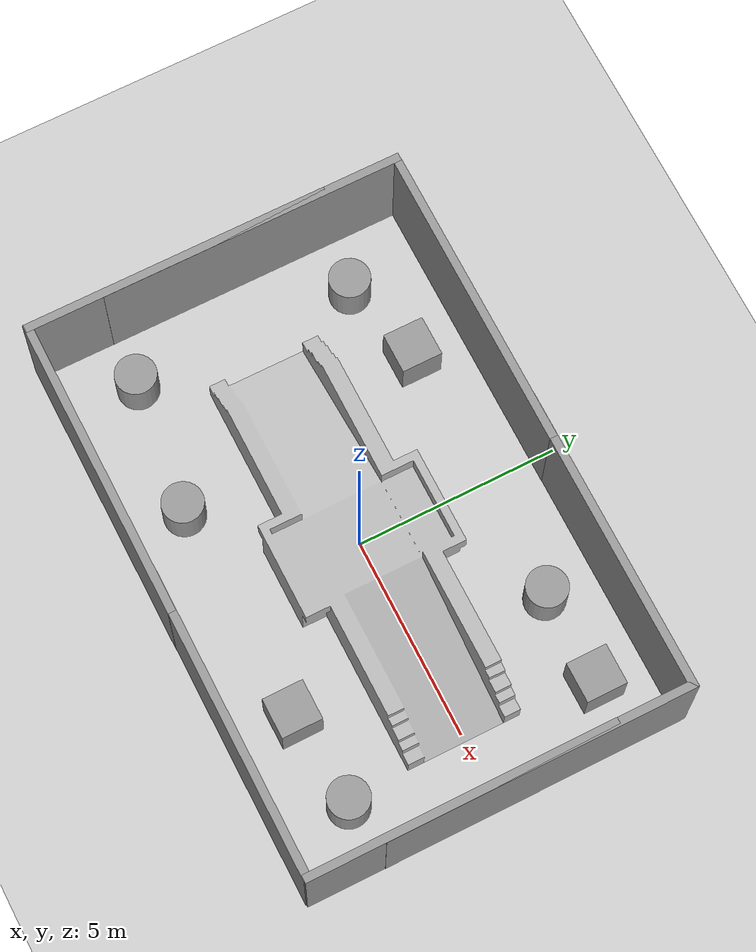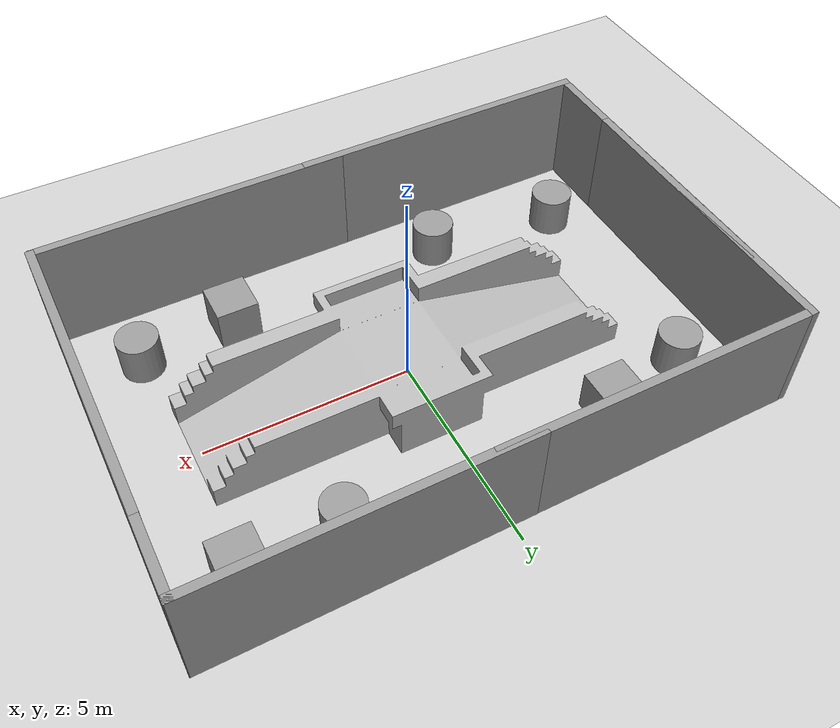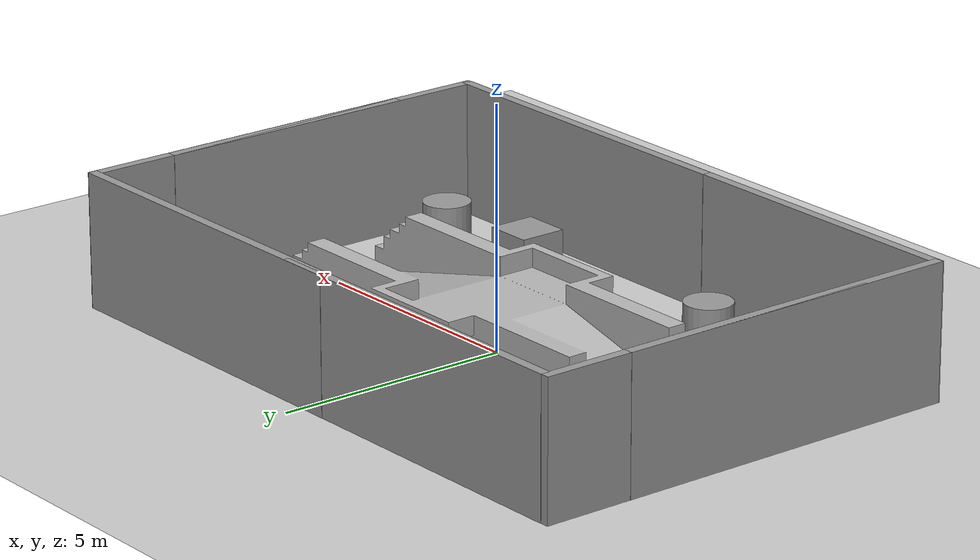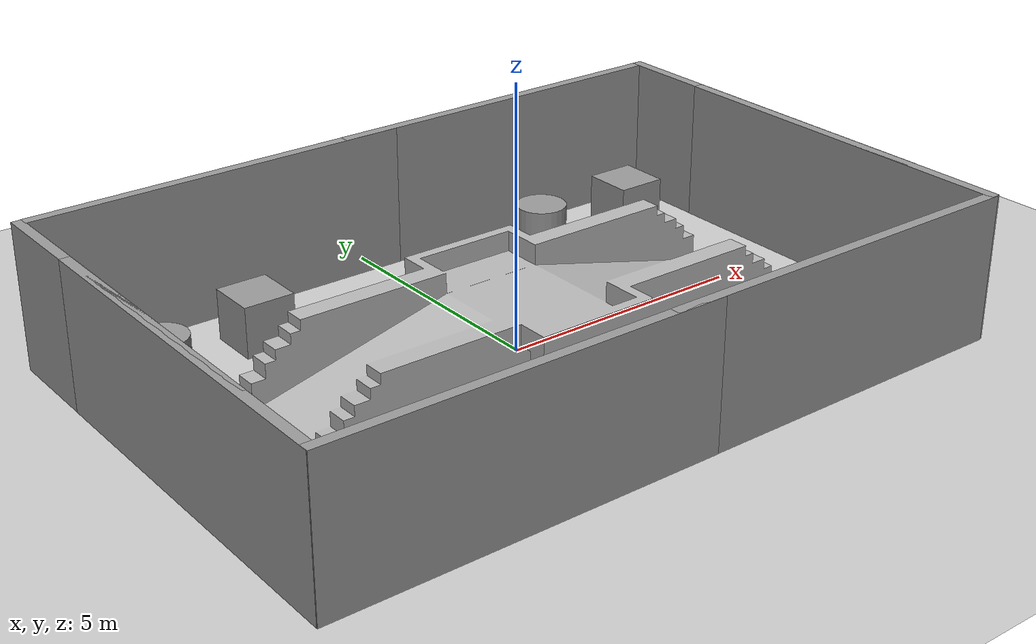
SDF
<sdf version="1.6">
 <world name="default">
  <light name="sun" type="directional">
   <pose>0 0 10 0 -0 0</pose>
   <diffuse>0.8 0.8 0.8 1</diffuse>
   <specular>0.2 0.2 0.2 1</specular>
   <attenuation>
    <range>1000</range>
    <constant>0.9</constant>
    <linear>0.01</linear>
    <quadratic>0.001</quadratic>
   </attenuation>
   <direction>-0.5 0.1 -0.9</direction>
  </light>
  <model name="ground_plane">
   <static>1</static>
   <link name="link">
    <collision name="collision">
     <geometry><plane><normal>0 0 1</normal><size>100 100</size></plane></geometry>
     <surface>
      <contact><collide_bitmask>65535</collide_bitmask></contact>
      <friction><ode><mu>100</mu><mu2>50</mu2></ode></friction>
     </surface>
    </collision>
    <visual name="visual">
     <cast_shadows>0</cast_shadows>
     <geometry><plane><normal>0 0 1</normal><size>100 100</size></plane></geometry>
     <material>
      <script><uri>file://media/materials/scripts/gazebo.material</uri><name>Gazebo/Grey</name></script>
     </material>
    </visual>
   </link>
  </model>
  <gravity>0 0 -9.8</gravity>
  <magnetic_field>6e-06 2.3e-05 -4.2e-05</magnetic_field>
  <atmosphere type="adiabatic"/>
  <physics name="default_physics" default="0" type="ode">
   <max_step_size>0.001</max_step_size>
   <real_time_factor>1</real_time_factor>
   <real_time_update_rate>1000</real_time_update_rate>
  </physics>
  <scene><ambient>0.4 0.4 0.4 1</ambient><background>0.7 0.7 0.7 1</background><shadows>1</shadows></scene>
  <audio><device>default</device></audio>
  <spherical_coordinates>
   <surface_model>EARTH_WGS84</surface_model>
   <latitude_deg>0</latitude_deg>
   <longitude_deg>0</longitude_deg>
   <elevation>0</elevation>
   <heading_deg>0</heading_deg>
  </spherical_coordinates>
  <model name="slope_complete">
   <static>1</static>
   <link name="base">
    <visual name="visual">
     <geometry>
      <mesh><uri>model://slope/meshes/slope_complete.stl</uri><scale>0.02 0.02 0.02</scale></mesh>
     </geometry>
    </visual>
    <collision name="environment_collision">
     <geometry>
      <mesh><uri>model://slope/meshes/slope_complete.stl</uri><scale>0.02 0.02 0.02</scale></mesh>
     </geometry>
     <surface><friction><ode><mu>1</mu><mu2>1</mu2></ode></friction></surface>
    </collision>
   </link>
   <pose>-4.81664 0.964585 -0.01 3.14 -0 0</pose>
  </model>
  <model name="grey_wall">
   <static>1</static>
   <link name="link">
    <pose>0 0 1.4 0 -0 0</pose>
    <collision name="collision"><geometry><box><size>7.5 0.2 2.8</size></box></geometry></collision>
    <visual name="visual">
     <cast_shadows>0</cast_shadows>
     <geometry><box><size>7.5 0.2 2.8</size></box></geometry>
     <material>
      <script>
       <uri>model://grey_wall/materials/scripts</uri>
       <uri>model://grey_wall/materials/textures</uri>
       <name>vrc/grey_wall</name>
      </script>
     </material>
    </visual>
   </link>
   <pose>-3.41093 -4.70615 0 0 -0 0</pose>
  </model>
  <model name="grey_wall_clone">
   <static>1</static>
   <link name="link">
    <pose>0 0 1.4 0 -0 0</pose>
    <collision name="collision"><geometry><box><size>7.5 0.2 2.8</size></box></geometry></collision>
    <visual name="visual">
     <cast_shadows>0</cast_shadows>
     <geometry><box><size>7.5 0.2 2.8</size></box></geometry>
     <material>
      <script>
       <uri>model://grey_wall/materials/scripts</uri>
       <uri>model://grey_wall/materials/textures</uri>
       <name>vrc/grey_wall</name>
      </script>
     </material>
    </visual>
   </link>
   <pose>3.10407 -4.6999 0 0 -0 0</pose>
  </model>
  <model name="grey_wall_clone_0">
   <static>1</static>
   <link name="link">
    <pose>0 0 1.4 0 -0 0</pose>
    <collision name="collision"><geometry><box><size>7.5 0.2 2.8</size></box></geometry></collision>
    <visual name="visual">
     <cast_shadows>0</cast_shadows>
     <geometry><box><size>7.5 0.2 2.8</size></box></geometry>
     <material>
      <script>
       <uri>model://grey_wall/materials/scripts</uri>
       <uri>model://grey_wall/materials/textures</uri>
       <name>vrc/grey_wall</name>
      </script>
     </material>
    </visual>
   </link>
   <pose>-3.22137 4.51463 0 0 -0 0</pose>
  </model>
  <model name="grey_wall_clone_1">
   <static>1</static>
   <link name="link">
    <pose>0 0 1.4 0 -0 0</pose>
    <collision name="collision"><geometry><box><size>7.5 0.2 2.8</size></box></geometry></collision>
    <visual name="visual">
     <cast_shadows>0</cast_shadows>
     <geometry><box><size>7.5 0.2 2.8</size></box></geometry>
     <material>
      <script>
       <uri>model://grey_wall/materials/scripts</uri>
       <uri>model://grey_wall/materials/textures</uri>
       <name>vrc/grey_wall</name>
      </script>
     </material>
    </visual>
   </link>
   <pose>3.1574 4.51971 0 0 -0 0</pose>
  </model>
  <model name="grey_wall_clone_2">
   <static>1</static>
   <link name="link">
    <pose>0 0 1.4 0 -0 0</pose>
    <collision name="collision"><geometry><box><size>7.5 0.2 2.8</size></box></geometry></collision>
    <visual name="visual">
     <cast_shadows>0</cast_shadows>
     <geometry><box><size>7.5 0.2 2.8</size></box></geometry>
     <material>
      <script>
       <uri>model://grey_wall/materials/scripts</uri>
       <uri>model://grey_wall/materials/textures</uri>
       <name>vrc/grey_wall</name>
      </script>
     </material>
    </visual>
   </link>
   <pose>6.81141 -1.03245 0 0 -0 1.57</pose>
  </model>
  <model name="grey_wall_clone_2_clone">
   <static>1</static>
   <link name="link">
    <pose>0 0 1.4 0 -0 0</pose>
    <collision name="collision"><geometry><box><size>7.5 0.2 2.8</size></box></geometry></collision>
    <visual name="visual">
     <cast_shadows>0</cast_shadows>
     <geometry><box><size>7.5 0.2 2.8</size></box></geometry>
     <material>
      <script>
       <uri>model://grey_wall/materials/scripts</uri>
       <uri>model://grey_wall/materials/textures</uri>
       <name>vrc/grey_wall</name>
      </script>
     </material>
    </visual>
   </link>
   <pose>6.81912 0.86727 0 0 -0 1.57</pose>
  </model>
  <model name="grey_wall_clone_2_clone_0">
   <static>1</static>
   <link name="link">
    <pose>0 0 1.4 0 -0 0</pose>
    <collision name="collision"><geometry><box><size>7.5 0.2 2.8</size></box></geometry></collision>
    <visual name="visual">
     <cast_shadows>0</cast_shadows>
     <geometry><box><size>7.5 0.2 2.8</size></box></geometry>
     <material>
      <script>
       <uri>model://grey_wall/materials/scripts</uri>
       <uri>model://grey_wall/materials/textures</uri>
       <name>vrc/grey_wall</name>
      </script>
     </material>
    </visual>
   </link>
   <pose>-7.06045 -1.03607 0 0 -0 1.57</pose>
  </model>
  <model name="grey_wall_clone_2_clone_1">
   <static>1</static>
   <link name="link">
    <pose>0 0 1.4 0 -0 0</pose>
    <collision name="collision"><geometry><box><size>7.5 0.2 2.8</size></box></geometry></collision>
    <visual name="visual">
     <cast_shadows>0</cast_shadows>
     <geometry><box><size>7.5 0.2 2.8</size></box></geometry>
     <material>
      <script>
       <uri>model://grey_wall/materials/scripts</uri>
       <uri>model://grey_wall/materials/textures</uri>
       <name>vrc/grey_wall</name>
      </script>
     </material>
    </visual>
   </link>
   <pose>-7.05567 0.857925 0 0 -0 1.57</pose>
  </model>
  <model name="unit_box_0">
   <pose>-3.45412 3.12107 0.499995 0 1e-05 5e-06</pose>
   <link name="link">
    <inertial>
     <mass>1</mass>
     <inertia>
      <ixx>0.166667</ixx>
      <ixy>0</ixy>
      <ixz>0</ixz>
      <iyy>0.166667</iyy>
      <iyz>0</iyz>
      <izz>0.166667</izz>
     </inertia>
    </inertial>
    <collision name="collision"><geometry><box><size>1 1 1</size></box></geometry></collision>
    <visual name="visual">
     <geometry><box><size>1 1 1</size></box></geometry>
     <material>
      <script><name>Gazebo/Grey</name><uri>file://media/materials/scripts/gazebo.material</uri></script>
     </material>
    </visual>
   </link>
  </model>
  <model name="unit_cylinder_0">
   <pose>3.06471 3.13499 0.499993 -3e-06 3e-06 0</pose>
   <link name="link">
    <inertial>
     <mass>1</mass>
     <inertia><ixx>0.145833</ixx><ixy>0</ixy><ixz>0</ixz><iyy>0.145833</iyy><iyz>0</iyz><izz>0.125</izz></inertia>
    </inertial>
    <collision name="collision">
     <geometry><cylinder><radius>0.5</radius><length>1</length></cylinder></geometry>
    </collision>
    <visual name="visual">
     <geometry><cylinder><radius>0.5</radius><length>1</length></cylinder></geometry>
     <material>
      <script><name>Gazebo/Grey</name><uri>file://media/materials/scripts/gazebo.material</uri></script>
     </material>
    </visual>
   </link>
  </model>
  <model name="unit_box">
   <pose>3.0032 -3.18398 0.499995 1e-05 -0 0</pose>
   <link name="link">
    <inertial>
     <mass>1</mass>
     <inertia>
      <ixx>0.166667</ixx>
      <ixy>0</ixy>
      <ixz>0</ixz>
      <iyy>0.166667</iyy>
      <iyz>0</iyz>
      <izz>0.166667</izz>
     </inertia>
    </inertial>
    <collision name="collision"><geometry><box><size>1 1 1</size></box></geometry></collision>
    <visual name="visual">
     <geometry><box><size>1 1 1</size></box></geometry>
     <material>
      <script><name>Gazebo/Grey</name><uri>file://media/materials/scripts/gazebo.material</uri></script>
     </material>
    </visual>
   </link>
  </model>
  <model name="unit_cylinder">
   <pose>-2.40174 -3.25061 0.499997 4e-06 4e-06 -0</pose>
   <link name="link">
    <inertial>
     <mass>1</mass>
     <inertia><ixx>0.145833</ixx><ixy>0</ixy><ixz>0</ixz><iyy>0.145833</iyy><iyz>0</iyz><izz>0.125</izz></inertia>
    </inertial>
    <collision name="collision">
     <geometry><cylinder><radius>0.5</radius><length>1</length></cylinder></geometry>
    </collision>
    <visual name="visual">
     <geometry><cylinder><radius>0.5</radius><length>1</length></cylinder></geometry>
     <material>
      <script><name>Gazebo/Grey</name><uri>file://media/materials/scripts/gazebo.material</uri></script>
     </material>
    </visual>
   </link>
  </model>
  <model name="unit_cylinder_1">
   <pose>-5.67215 -2.86359 0.499997 0 -0 0</pose>
   <link name="link">
    <inertial>
     <mass>1</mass>
     <inertia><ixx>0.145833</ixx><ixy>0</ixy><ixz>0</ixz><iyy>0.145833</iyy><iyz>0</iyz><izz>0.125</izz></inertia>
    </inertial>
    <collision name="collision">
     <geometry><cylinder><radius>0.5</radius><length>1</length></cylinder></geometry>
    </collision>
    <visual name="visual">
     <geometry><cylinder><radius>0.5</radius><length>1</length></cylinder></geometry>
     <material>
      <script><name>Gazebo/Grey</name><uri>file://media/materials/scripts/gazebo.material</uri></script>
     </material>
    </visual>
   </link>
  </model>
  <model name="unit_cylinder_2">
   <pose>5.32815 -2.97507 0.499992 -3e-06 4e-06 0</pose>
   <link name="link">
    <inertial>
     <mass>1</mass>
     <inertia><ixx>0.145833</ixx><ixy>0</ixy><ixz>0</ixz><iyy>0.145833</iyy><iyz>0</iyz><izz>0.125</izz></inertia>
    </inertial>
    <collision name="collision">
     <geometry><cylinder><radius>0.5</radius><length>1</length></cylinder></geometry>
    </collision>
    <visual name="visual">
     <geometry><cylinder><radius>0.5</radius><length>1</length></cylinder></geometry>
     <material>
      <script><name>Gazebo/Grey</name><uri>file://media/materials/scripts/gazebo.material</uri></script>
     </material>
    </visual>
   </link>
  </model>
  <model name="unit_cylinder_3">
   <pose>-5.58935 2.58305 0.499993 -3e-06 -3e-06 0</pose>
   <link name="link">
    <inertial>
     <mass>1</mass>
     <inertia><ixx>0.145833</ixx><ixy>0</ixy><ixz>0</ixz><iyy>0.145833</iyy><iyz>0</iyz><izz>0.125</izz></inertia>
    </inertial>
    <collision name="collision">
     <geometry><cylinder><radius>0.5</radius><length>1</length></cylinder></geometry>
    </collision>
    <visual name="visual">
     <geometry><cylinder><radius>0.5</radius><length>1</length></cylinder></geometry>
     <material>
      <script><name>Gazebo/Grey</name><uri>file://media/materials/scripts/gazebo.material</uri></script>
     </material>
    </visual>
   </link>
  </model>
  <model name="unit_box_1">
   <pose>5.31642 3.16668 0.499995 0 1e-05 0</pose>
   <link name="link">
    <inertial>
     <mass>1</mass>
     <inertia>
      <ixx>0.166667</ixx>
      <ixy>0</ixy>
      <ixz>0</ixz>
      <iyy>0.166667</iyy>
      <iyz>0</iyz>
      <izz>0.166667</izz>
     </inertia>
    </inertial>
    <collision name="collision"><geometry><box><size>1 1 1</size></box></geometry></collision>
    <visual name="visual">
     <geometry><box><size>1 1 1</size></box></geometry>
     <material>
      <script><name>Gazebo/Grey</name><uri>file://media/materials/scripts/gazebo.material</uri></script>
     </material>
    </visual>
   </link>
  </model>
 </world>
</sdf>
